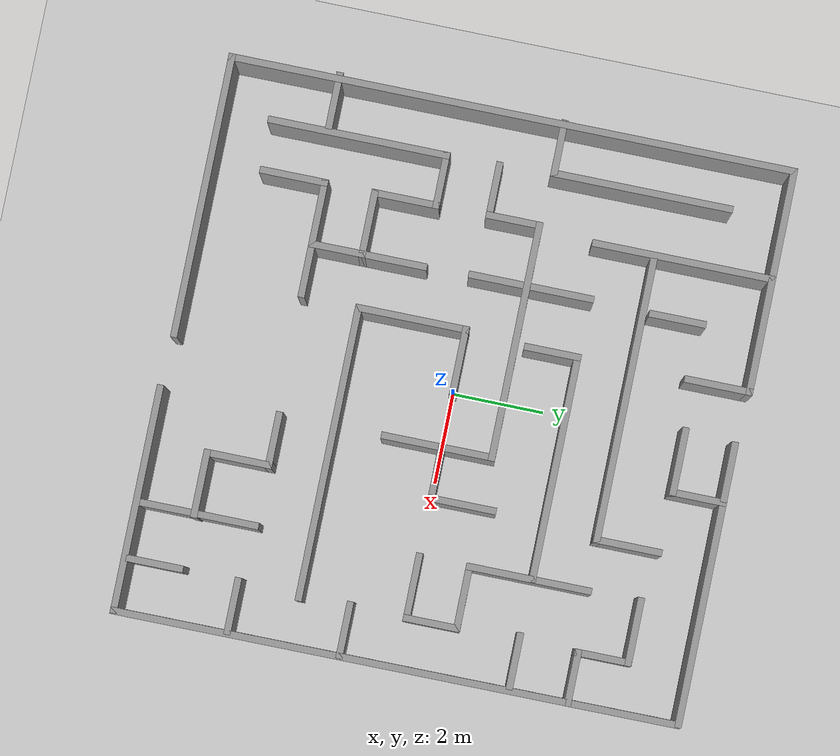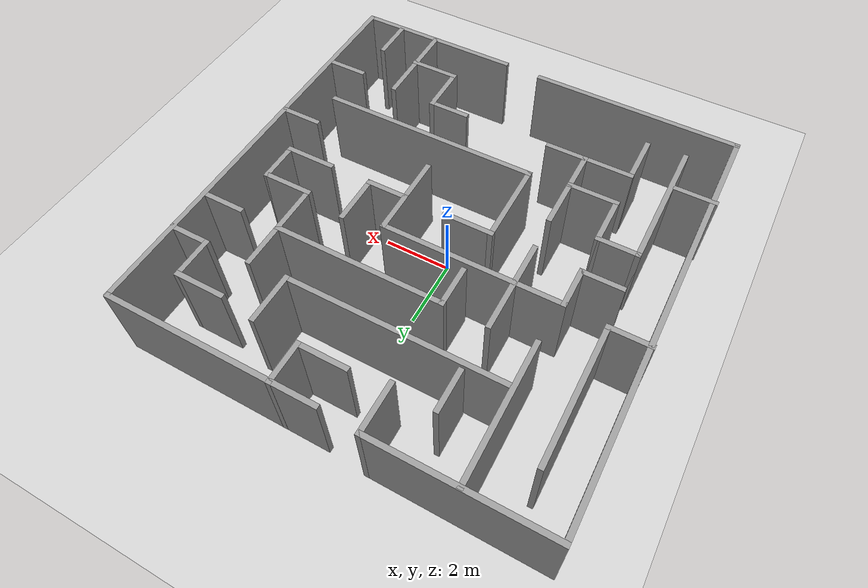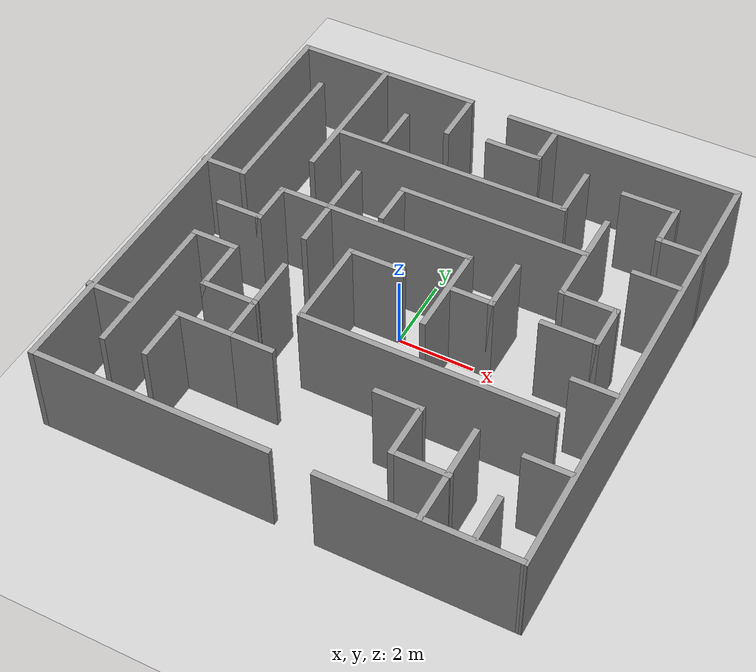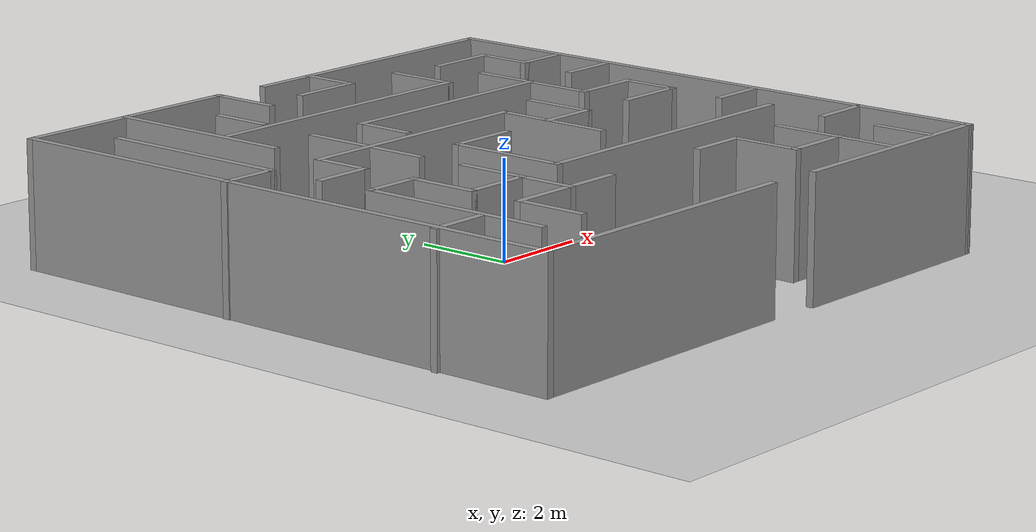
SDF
<sdf version="1.6">
 <world name="default">
  <light name="sun" type="directional">
   <pose>0 0 10 0 -0 0</pose>
   <diffuse>0.8 0.8 0.8 1</diffuse>
   <specular>0.1 0.1 0.1 1</specular>
   <attenuation>
    <range>1000</range>
    <constant>0.9</constant>
    <linear>0.01</linear>
    <quadratic>0.001</quadratic>
   </attenuation>
   <direction>-0.5 0.5 -1</direction>
  </light>
  <gravity>0 0 -9.8</gravity>
  <magnetic_field>6e-06 2.3e-05 -4.2e-05</magnetic_field>
  <atmosphere type="adiabatic"/>
  <physics name="default_physics" default="0" type="ode">
   <max_step_size>0.001</max_step_size>
   <real_time_factor>1</real_time_factor>
   <real_time_update_rate>1000</real_time_update_rate>
  </physics>
  <scene><ambient>255 255 255 1</ambient><background>0.7 0.7 0.7 1</background><shadows>1</shadows></scene>
  <spherical_coordinates>
   <surface_model>EARTH_WGS84</surface_model>
   <latitude_deg>0</latitude_deg>
   <longitude_deg>0</longitude_deg>
   <elevation>0</elevation>
   <heading_deg>0</heading_deg>
  </spherical_coordinates>
  <model name="ue3_Maze.world">
   <pose>0.00509 0.03991 0 0 -0 0</pose>
   <link name="Wall_1">
    <collision name="Wall_1_Collision">
     <geometry><box><size>1.5 0.15 2.5</size></box></geometry>
     <pose>0 0 1.25 0 -0 0</pose>
    </collision>
    <visual name="Wall_1_Visual">
     <pose>0 0 1.25 0 -0 0</pose>
     <geometry><box><size>1.5 0.15 2.5</size></box></geometry>
     <material>
      <script><uri>file://media/materials/scripts/gazebo.material</uri><name>Gazebo/Grey</name></script>
      <ambient>0.4 0.4 0.4 1</ambient>
     </material>
    </visual>
    <pose>-1.20477 5.53143 0 0 -0 1.5708</pose>
   </link>
   <link name="Wall_10">
    <collision name="Wall_10_Collision">
     <geometry><box><size>12.4598 0.15 2.5</size></box></geometry>
     <pose>0 0 1.25 0 -0 0</pose>
    </collision>
    <visual name="Wall_10_Visual">
     <pose>0 0 1.25 0 -0 0</pose>
     <geometry><box><size>12.4598 0.15 2.5</size></box></geometry>
     <material>
      <script><uri>file://media/materials/scripts/gazebo.material</uri><name>Gazebo/Grey</name></script>
      <ambient>0.4 0.4 0.4 1</ambient>
     </material>
    </visual>
    <pose>6.1121 -0.051418 0 0 0 -1.56916</pose>
   </link>
   <link name="Wall_11">
    <collision name="Wall_11_Collision">
     <geometry><box><size>5 0.15 2.5</size></box></geometry>
     <pose>0 0 1.25 0 -0 0</pose>
    </collision>
    <visual name="Wall_11_Visual">
     <pose>0 0 1.25 0 -0 0</pose>
     <geometry><box><size>5 0.15 2.5</size></box></geometry>
     <material>
      <script><uri>file://media/materials/scripts/gazebo.material</uri><name>Gazebo/Grey</name></script>
      <ambient>0.4 0.4 0.4 1</ambient>
     </material>
    </visual>
    <pose>3.67704 -6.20631 0 0 -0 3.14159</pose>
   </link>
   <link name="Wall_13">
    <collision name="Wall_13_Collision">
     <geometry><box><size>6.25 0.15 2.5</size></box></geometry>
     <pose>0 0 1.25 0 -0 0</pose>
    </collision>
    <visual name="Wall_13_Visual">
     <pose>0 0 1.25 0 -0 0</pose>
     <geometry><box><size>6.25 0.15 2.5</size></box></geometry>
     <material>
      <script><uri>file://media/materials/scripts/gazebo.material</uri><name>Gazebo/Grey</name></script>
      <ambient>0.4 0.4 0.4 1</ambient>
     </material>
    </visual>
    <pose>-0.487945 3.6295 0 0 -0 0</pose>
   </link>
   <link name="Wall_14">
    <collision name="Wall_14_Collision">
     <geometry><box><size>1.5 0.15 2.5</size></box></geometry>
     <pose>0 0 1.25 0 -0 0</pose>
    </collision>
    <visual name="Wall_14_Visual">
     <pose>0 0 1.25 0 -0 0</pose>
     <geometry><box><size>1.5 0.15 2.5</size></box></geometry>
     <material>
      <script><uri>file://media/materials/scripts/gazebo.material</uri><name>Gazebo/Grey</name></script>
      <ambient>0.4 0.4 0.4 1</ambient>
     </material>
    </visual>
    <pose>2.56205 4.3045 0 0 -0 1.5708</pose>
   </link>
   <link name="Wall_16">
    <collision name="Wall_16_Collision">
     <geometry><box><size>1.25 0.15 2.5</size></box></geometry>
     <pose>0 0 1.25 0 -0 0</pose>
    </collision>
    <visual name="Wall_16_Visual">
     <pose>0 0 1.25 0 -0 0</pose>
     <geometry><box><size>1.25 0.15 2.5</size></box></geometry>
     <material>
      <script><uri>file://media/materials/scripts/gazebo.material</uri><name>Gazebo/Grey</name></script>
      <ambient>0.4 0.4 0.4 1</ambient>
     </material>
    </visual>
    <pose>-2.4317 4.38688 0 0 0 -1.5708</pose>
   </link>
   <link name="Wall_2">
    <collision name="Wall_2_Collision">
     <geometry><box><size>5 0.15 2.5</size></box></geometry>
     <pose>0 0 1.25 0 -0 0</pose>
    </collision>
    <visual name="Wall_2_Visual">
     <pose>0 0 1.25 0 -0 0</pose>
     <geometry><box><size>5 0.15 2.5</size></box></geometry>
     <material>
      <script><uri>file://media/materials/scripts/gazebo.material</uri><name>Gazebo/Grey</name></script>
      <ambient>0.4 0.4 0.4 1</ambient>
     </material>
    </visual>
    <pose>-3.62977 6.20643 0 0 -0 3.14159</pose>
   </link>
   <link name="Wall_20">
    <collision name="Wall_20_Collision">
     <geometry><box><size>1.25 0.15 2.5</size></box></geometry>
     <pose>0 0 1.25 0 -0 0</pose>
    </collision>
    <visual name="Wall_20_Visual">
     <pose>0 0 1.25 0 -0 0</pose>
     <geometry><box><size>1.25 0.15 2.5</size></box></geometry>
     <material>
      <script><uri>file://media/materials/scripts/gazebo.material</uri><name>Gazebo/Grey</name></script>
      <ambient>0.4 0.4 0.4 1</ambient>
     </material>
    </visual>
    <pose>1.23929 5.57632 0 0 0 -1.5708</pose>
   </link>
   <link name="Wall_21">
    <collision name="Wall_21_Collision">
     <geometry><box><size>1.5 0.15 2.5</size></box></geometry>
     <pose>0 0 1.25 0 -0 0</pose>
    </collision>
    <visual name="Wall_21_Visual">
     <pose>0 0 1.25 0 -0 0</pose>
     <geometry><box><size>1.5 0.15 2.5</size></box></geometry>
     <material>
      <script><uri>file://media/materials/scripts/gazebo.material</uri><name>Gazebo/Grey</name></script>
      <ambient>0.4 0.4 0.4 1</ambient>
     </material>
    </visual>
    <pose>0.564288 5.02632 0 0 -0 3.14159</pose>
   </link>
   <link name="Wall_23">
    <collision name="Wall_23_Collision">
     <geometry><box><size>1.25 0.15 2.5</size></box></geometry>
     <pose>0 0 1.25 0 -0 0</pose>
    </collision>
    <visual name="Wall_23_Visual">
     <pose>0 0 1.25 0 -0 0</pose>
     <geometry><box><size>1.25 0.15 2.5</size></box></geometry>
     <material>
      <script><uri>file://media/materials/scripts/gazebo.material</uri><name>Gazebo/Grey</name></script>
      <ambient>0.4 0.4 0.4 1</ambient>
     </material>
    </visual>
    <pose>5.55677 3.71269 0 0 -0 3.14159</pose>
   </link>
   <link name="Wall_24">
    <collision name="Wall_24_Collision">
     <geometry><box><size>1.25 0.15 2.5</size></box></geometry>
     <pose>0 0 1.25 0 -0 0</pose>
    </collision>
    <visual name="Wall_24_Visual">
     <pose>0 0 1.25 0 -0 0</pose>
     <geometry><box><size>1.25 0.15 2.5</size></box></geometry>
     <material>
      <script><uri>file://media/materials/scripts/gazebo.material</uri><name>Gazebo/Grey</name></script>
      <ambient>0.4 0.4 0.4 1</ambient>
     </material>
    </visual>
    <pose>5.00677 4.26269 0 0 -0 1.5708</pose>
   </link>
   <link name="Wall_25">
    <collision name="Wall_25_Collision">
     <geometry><box><size>1.5 0.15 2.5</size></box></geometry>
     <pose>0 0 1.25 0 -0 0</pose>
    </collision>
    <visual name="Wall_25_Visual">
     <pose>0 0 1.25 0 -0 0</pose>
     <geometry><box><size>1.5 0.15 2.5</size></box></geometry>
     <material>
      <script><uri>file://media/materials/scripts/gazebo.material</uri><name>Gazebo/Grey</name></script>
      <ambient>0.4 0.4 0.4 1</ambient>
     </material>
    </visual>
    <pose>4.33177 4.81269 0 0 -0 3.14159</pose>
   </link>
   <link name="Wall_27">
    <collision name="Wall_27_Collision">
     <geometry><box><size>1.25 0.15 2.5</size></box></geometry>
     <pose>0 0 1.25 0 -0 0</pose>
    </collision>
    <visual name="Wall_27_Visual">
     <pose>0 0 1.25 0 -0 0</pose>
     <geometry><box><size>1.25 0.15 2.5</size></box></geometry>
     <material>
      <script><uri>file://media/materials/scripts/gazebo.material</uri><name>Gazebo/Grey</name></script>
      <ambient>0.4 0.4 0.4 1</ambient>
     </material>
    </visual>
    <pose>5.4562 2.42542 0 0 -0 3.14159</pose>
   </link>
   <link name="Wall_29">
    <collision name="Wall_29_Collision">
     <geometry><box><size>1.25 0.15 2.5</size></box></geometry>
     <pose>0 0 1.25 0 -0 0</pose>
    </collision>
    <visual name="Wall_29_Visual">
     <pose>0 0 1.25 0 -0 0</pose>
     <geometry><box><size>1.25 0.15 2.5</size></box></geometry>
     <material>
      <script><uri>file://media/materials/scripts/gazebo.material</uri><name>Gazebo/Grey</name></script>
      <ambient>0.4 0.4 0.4 1</ambient>
     </material>
    </visual>
    <pose>5.53666 -1.27548 0 0 -0 3.14159</pose>
   </link>
   <link name="Wall_3">
    <collision name="Wall_3_Collision">
     <geometry><box><size>12.5 0.15 2.5</size></box></geometry>
     <pose>0 0 1.25 0 -0 0</pose>
    </collision>
    <visual name="Wall_3_Visual">
     <pose>0 0 1.25 0 -0 0</pose>
     <geometry><box><size>12.5 0.15 2.5</size></box></geometry>
     <material>
      <script><uri>file://media/materials/scripts/gazebo.material</uri><name>Gazebo/Grey</name></script>
      <ambient>0.4 0.4 0.4 1</ambient>
     </material>
    </visual>
    <pose>-6.05477 0.031427 0 0 0 -1.5708</pose>
   </link>
   <link name="Wall_31">
    <collision name="Wall_31_Collision">
     <geometry><box><size>1.25 0.15 2.5</size></box></geometry>
     <pose>0 0 1.25 0 -0 0</pose>
    </collision>
    <visual name="Wall_31_Visual">
     <pose>0 0 1.25 0 -0 0</pose>
     <geometry><box><size>1.25 0.15 2.5</size></box></geometry>
     <material>
      <script><uri>file://media/materials/scripts/gazebo.material</uri><name>Gazebo/Grey</name></script>
      <ambient>0.4 0.4 0.4 1</ambient>
     </material>
    </visual>
    <pose>5.51655 -3.72933 0 0 -0 3.14159</pose>
   </link>
   <link name="Wall_33">
    <collision name="Wall_33_Collision">
     <geometry><box><size>1.25 0.15 2.5</size></box></geometry>
     <pose>0 0 1.25 0 -0 0</pose>
    </collision>
    <visual name="Wall_33_Visual">
     <pose>0 0 1.25 0 -0 0</pose>
     <geometry><box><size>1.25 0.15 2.5</size></box></geometry>
     <material>
      <script><uri>file://media/materials/scripts/gazebo.material</uri><name>Gazebo/Grey</name></script>
      <ambient>0.4 0.4 0.4 1</ambient>
     </material>
    </visual>
    <pose>5.51655 -3.72933 0 0 -0 3.14159</pose>
   </link>
   <link name="Wall_37">
    <collision name="Wall_37_Collision">
     <geometry><box><size>1.25 0.15 2.5</size></box></geometry>
     <pose>0 0 1.25 0 -0 0</pose>
    </collision>
    <visual name="Wall_37_Visual">
     <pose>0 0 1.25 0 -0 0</pose>
     <geometry><box><size>1.25 0.15 2.5</size></box></geometry>
     <material>
      <script><uri>file://media/materials/scripts/gazebo.material</uri><name>Gazebo/Grey</name></script>
      <ambient>0.4 0.4 0.4 1</ambient>
     </material>
    </visual>
    <pose>4.9603 -5.55273 0 0 -0 1.5708</pose>
   </link>
   <link name="Wall_39">
    <collision name="Wall_39_Collision">
     <geometry><box><size>2.75 0.15 2.5</size></box></geometry>
     <pose>0 0 1.25 0 -0 0</pose>
    </collision>
    <visual name="Wall_39_Visual">
     <pose>0 0 1.25 0 -0 0</pose>
     <geometry><box><size>2.75 0.15 2.5</size></box></geometry>
     <material>
      <script><uri>file://media/materials/scripts/gazebo.material</uri><name>Gazebo/Grey</name></script>
      <ambient>0.4 0.4 0.4 1</ambient>
     </material>
    </visual>
    <pose>3.73337 -4.9033 0 0 -0 1.5708</pose>
   </link>
   <link name="Wall_4">
    <collision name="Wall_4_Collision">
     <geometry><box><size>6.25 0.15 2.5</size></box></geometry>
     <pose>0 0 1.25 0 -0 0</pose>
    </collision>
    <visual name="Wall_4_Visual">
     <pose>0 0 1.25 0 -0 0</pose>
     <geometry><box><size>6.25 0.15 2.5</size></box></geometry>
     <material>
      <script><uri>file://media/materials/scripts/gazebo.material</uri><name>Gazebo/Grey</name></script>
      <ambient>0.4 0.4 0.4 1</ambient>
     </material>
    </visual>
    <pose>-3.00477 -6.14357 0 0 -0 0</pose>
   </link>
   <link name="Wall_41">
    <collision name="Wall_41_Collision">
     <geometry><box><size>1.5 0.15 2.5</size></box></geometry>
     <pose>0 0 1.25 0 -0 0</pose>
    </collision>
    <visual name="Wall_41_Visual">
     <pose>0 0 1.25 0 -0 0</pose>
     <geometry><box><size>1.5 0.15 2.5</size></box></geometry>
     <material>
      <script><uri>file://media/materials/scripts/gazebo.material</uri><name>Gazebo/Grey</name></script>
      <ambient>0.4 0.4 0.4 1</ambient>
     </material>
    </visual>
    <pose>3.07849 -4.93615 0 0 -0 3.14159</pose>
   </link>
   <link name="Wall_42">
    <collision name="Wall_42_Collision">
     <geometry><box><size>1.5 0.15 2.5</size></box></geometry>
     <pose>0 0 1.25 0 -0 0</pose>
    </collision>
    <visual name="Wall_42_Visual">
     <pose>0 0 1.25 0 -0 0</pose>
     <geometry><box><size>1.5 0.15 2.5</size></box></geometry>
     <material>
      <script><uri>file://media/materials/scripts/gazebo.material</uri><name>Gazebo/Grey</name></script>
      <ambient>0.4 0.4 0.4 1</ambient>
     </material>
    </visual>
    <pose>2.40348 -4.26115 0 0 -0 1.5708</pose>
   </link>
   <link name="Wall_43">
    <collision name="Wall_43_Collision">
     <geometry><box><size>1.25 0.15 2.5</size></box></geometry>
     <pose>0 0 1.25 0 -0 0</pose>
    </collision>
    <visual name="Wall_43_Visual">
     <pose>0 0 1.25 0 -0 0</pose>
     <geometry><box><size>1.25 0.15 2.5</size></box></geometry>
     <material>
      <script><uri>file://media/materials/scripts/gazebo.material</uri><name>Gazebo/Grey</name></script>
      <ambient>0.4 0.4 0.4 1</ambient>
     </material>
    </visual>
    <pose>1.85349 -3.58615 0 0 -0 3.14159</pose>
   </link>
   <link name="Wall_45">
    <collision name="Wall_45_Collision">
     <geometry><box><size>1.25 0.15 2.5</size></box></geometry>
     <pose>0 0 1.25 0 -0 0</pose>
    </collision>
    <visual name="Wall_45_Visual">
     <pose>0 0 1.25 0 -0 0</pose>
     <geometry><box><size>1.25 0.15 2.5</size></box></geometry>
     <material>
      <script><uri>file://media/materials/scripts/gazebo.material</uri><name>Gazebo/Grey</name></script>
      <ambient>0.4 0.4 0.4 1</ambient>
     </material>
    </visual>
    <pose>-5.53205 1.15827 0 0 -0 0</pose>
   </link>
   <link name="Wall_46">
    <collision name="Wall_46_Collision">
     <geometry><box><size>4 0.15 2.5</size></box></geometry>
     <pose>0 0 1.25 0 -0 0</pose>
    </collision>
    <visual name="Wall_46_Visual">
     <pose>0 0 1.25 0 -0 0</pose>
     <geometry><box><size>4 0.15 2.5</size></box></geometry>
     <material>
      <script><uri>file://media/materials/scripts/gazebo.material</uri><name>Gazebo/Grey</name></script>
      <ambient>0.4 0.4 0.4 1</ambient>
     </material>
    </visual>
    <pose>-4.98205 3.08327 0 0 -0 1.5708</pose>
   </link>
   <link name="Wall_48">
    <collision name="Wall_48_Collision">
     <geometry><box><size>1.25 0.15 2.5</size></box></geometry>
     <pose>0 0 1.25 0 -0 0</pose>
    </collision>
    <visual name="Wall_48_Visual">
     <pose>0 0 1.25 0 -0 0</pose>
     <geometry><box><size>1.25 0.15 2.5</size></box></geometry>
     <material>
      <script><uri>file://media/materials/scripts/gazebo.material</uri><name>Gazebo/Grey</name></script>
      <ambient>0.4 0.4 0.4 1</ambient>
     </material>
    </visual>
    <pose>-5.57228 -3.78967 0 0 -0 0</pose>
   </link>
   <link name="Wall_50">
    <collision name="Wall_50_Collision">
     <geometry><box><size>4 0.15 2.5</size></box></geometry>
     <pose>0 0 1.25 0 -0 0</pose>
    </collision>
    <visual name="Wall_50_Visual">
     <pose>0 0 1.25 0 -0 0</pose>
     <geometry><box><size>4 0.15 2.5</size></box></geometry>
     <material>
      <script><uri>file://media/materials/scripts/gazebo.material</uri><name>Gazebo/Grey</name></script>
      <ambient>0.4 0.4 0.4 1</ambient>
     </material>
    </visual>
    <pose>-4.89535 -3.11171 0 0 -0 1.5708</pose>
   </link>
   <link name="Wall_51">
    <collision name="Wall_51_Collision">
     <geometry><box><size>1.25 0.15 2.5</size></box></geometry>
     <pose>0 0 1.25 0 -0 0</pose>
    </collision>
    <visual name="Wall_51_Visual">
     <pose>0 0 1.25 0 -0 0</pose>
     <geometry><box><size>1.25 0.15 2.5</size></box></geometry>
     <material>
      <script><uri>file://media/materials/scripts/gazebo.material</uri><name>Gazebo/Grey</name></script>
      <ambient>0.4 0.4 0.4 1</ambient>
     </material>
    </visual>
    <pose>-4.34535 -1.18671 0 0 -0 0</pose>
   </link>
   <link name="Wall_52">
    <collision name="Wall_52_Collision">
     <geometry><box><size>1.5 0.15 2.5</size></box></geometry>
     <pose>0 0 1.25 0 -0 0</pose>
    </collision>
    <visual name="Wall_52_Visual">
     <pose>0 0 1.25 0 -0 0</pose>
     <geometry><box><size>1.5 0.15 2.5</size></box></geometry>
     <material>
      <script><uri>file://media/materials/scripts/gazebo.material</uri><name>Gazebo/Grey</name></script>
      <ambient>0.4 0.4 0.4 1</ambient>
     </material>
    </visual>
    <pose>-3.79535 -1.86171 0 0 0 -1.5708</pose>
   </link>
   <link name="Wall_53">
    <collision name="Wall_53_Collision">
     <geometry><box><size>1.5 0.15 2.5</size></box></geometry>
     <pose>0 0 1.25 0 -0 0</pose>
    </collision>
    <visual name="Wall_53_Visual">
     <pose>0 0 1.25 0 -0 0</pose>
     <geometry><box><size>1.5 0.15 2.5</size></box></geometry>
     <material>
      <script><uri>file://media/materials/scripts/gazebo.material</uri><name>Gazebo/Grey</name></script>
      <ambient>0.4 0.4 0.4 1</ambient>
     </material>
    </visual>
    <pose>-3.12035 -2.53671 0 0 -0 0</pose>
   </link>
   <link name="Wall_54">
    <collision name="Wall_54_Collision">
     <geometry><box><size>1.25 0.15 2.5</size></box></geometry>
     <pose>0 0 1.25 0 -0 0</pose>
    </collision>
    <visual name="Wall_54_Visual">
     <pose>0 0 1.25 0 -0 0</pose>
     <geometry><box><size>1.25 0.15 2.5</size></box></geometry>
     <material>
      <script><uri>file://media/materials/scripts/gazebo.material</uri><name>Gazebo/Grey</name></script>
      <ambient>0.4 0.4 0.4 1</ambient>
     </material>
    </visual>
    <pose>-2.44535 -3.08671 0 0 0 -1.5708</pose>
   </link>
   <link name="Wall_55">
    <collision name="Wall_55_Collision">
     <geometry><box><size>1.5 0.15 2.5</size></box></geometry>
     <pose>0 0 1.25 0 -0 0</pose>
    </collision>
    <visual name="Wall_55_Visual">
     <pose>0 0 1.25 0 -0 0</pose>
     <geometry><box><size>1.5 0.15 2.5</size></box></geometry>
     <material>
      <script><uri>file://media/materials/scripts/gazebo.material</uri><name>Gazebo/Grey</name></script>
      <ambient>0.4 0.4 0.4 1</ambient>
     </material>
    </visual>
    <pose>-3.12035 -3.63671 0 0 -0 3.14159</pose>
   </link>
   <link name="Wall_56">
    <collision name="Wall_56_Collision">
     <geometry><box><size>1.5 0.15 2.5</size></box></geometry>
     <pose>0 0 1.25 0 -0 0</pose>
    </collision>
    <visual name="Wall_56_Visual">
     <pose>0 0 1.25 0 -0 0</pose>
     <geometry><box><size>1.5 0.15 2.5</size></box></geometry>
     <material>
      <script><uri>file://media/materials/scripts/gazebo.material</uri><name>Gazebo/Grey</name></script>
      <ambient>0.4 0.4 0.4 1</ambient>
     </material>
    </visual>
    <pose>-3.79535 -4.31171 0 0 0 -1.5708</pose>
   </link>
   <link name="Wall_58">
    <collision name="Wall_58_Collision">
     <geometry><box><size>1.25 0.15 2.5</size></box></geometry>
     <pose>0 0 1.25 0 -0 0</pose>
    </collision>
    <visual name="Wall_58_Visual">
     <pose>0 0 1.25 0 -0 0</pose>
     <geometry><box><size>1.25 0.15 2.5</size></box></geometry>
     <material>
      <script><uri>file://media/materials/scripts/gazebo.material</uri><name>Gazebo/Grey</name></script>
      <ambient>0.4 0.4 0.4 1</ambient>
     </material>
    </visual>
    <pose>-4.36547 -0.028434 0 0 -0 0</pose>
   </link>
   <link name="Wall_59">
    <collision name="Wall_59_Collision">
     <geometry><box><size>1.25 0.15 2.5</size></box></geometry>
     <pose>0 0 1.25 0 -0 0</pose>
    </collision>
    <visual name="Wall_59_Visual">
     <pose>0 0 1.25 0 -0 0</pose>
     <geometry><box><size>1.25 0.15 2.5</size></box></geometry>
     <material>
      <script><uri>file://media/materials/scripts/gazebo.material</uri><name>Gazebo/Grey</name></script>
      <ambient>0.4 0.4 0.4 1</ambient>
     </material>
    </visual>
    <pose>-3.81547 0.521566 0 0 -0 1.5708</pose>
   </link>
   <link name="Wall_60">
    <collision name="Wall_60_Collision">
     <geometry><box><size>5.25 0.15 2.5</size></box></geometry>
     <pose>0 0 1.25 0 -0 0</pose>
    </collision>
    <visual name="Wall_60_Visual">
     <pose>0 0 1.25 0 -0 0</pose>
     <geometry><box><size>5.25 0.15 2.5</size></box></geometry>
     <material>
      <script><uri>file://media/materials/scripts/gazebo.material</uri><name>Gazebo/Grey</name></script>
      <ambient>0.4 0.4 0.4 1</ambient>
     </material>
    </visual>
    <pose>-1.26547 1.07157 0 0 -0 0</pose>
   </link>
   <link name="Wall_61">
    <collision name="Wall_61_Collision">
     <geometry><box><size>2.5 0.15 2.5</size></box></geometry>
     <pose>0 0 1.25 0 -0 0</pose>
    </collision>
    <visual name="Wall_61_Visual">
     <pose>0 0 1.25 0 -0 0</pose>
     <geometry><box><size>2.5 0.15 2.5</size></box></geometry>
     <material>
      <script><uri>file://media/materials/scripts/gazebo.material</uri><name>Gazebo/Grey</name></script>
      <ambient>0.4 0.4 0.4 1</ambient>
     </material>
    </visual>
    <pose>1.28453 -0.103434 0 0 0 -1.5708</pose>
   </link>
   <link name="Wall_63">
    <collision name="Wall_63_Collision">
     <geometry><box><size>2.75 0.15 2.5</size></box></geometry>
     <pose>0 0 1.25 0 -0 0</pose>
    </collision>
    <visual name="Wall_63_Visual">
     <pose>0 0 1.25 0 -0 0</pose>
     <geometry><box><size>2.75 0.15 2.5</size></box></geometry>
     <material>
      <script><uri>file://media/materials/scripts/gazebo.material</uri><name>Gazebo/Grey</name></script>
      <ambient>0.4 0.4 0.4 1</ambient>
     </material>
    </visual>
    <pose>-2.48172 1.16565 0 0 0 -1.5708</pose>
   </link>
   <link name="Wall_65">
    <collision name="Wall_65_Collision">
     <geometry><box><size>1.5 0.15 2.5</size></box></geometry>
     <pose>0 0 1.25 0 -0 0</pose>
    </collision>
    <visual name="Wall_65_Visual">
     <pose>0 0 1.25 0 -0 0</pose>
     <geometry><box><size>1.5 0.15 2.5</size></box></geometry>
     <material>
      <script><uri>file://media/materials/scripts/gazebo.material</uri><name>Gazebo/Grey</name></script>
      <ambient>0.4 0.4 0.4 1</ambient>
     </material>
    </visual>
    <pose>-0.622412 -0.028434 0 0 -0 3.14159</pose>
   </link>
   <link name="Wall_66">
    <collision name="Wall_66_Collision">
     <geometry><box><size>2.5 0.15 2.5</size></box></geometry>
     <pose>0 0 1.25 0 -0 0</pose>
    </collision>
    <visual name="Wall_66_Visual">
     <pose>0 0 1.25 0 -0 0</pose>
     <geometry><box><size>2.5 0.15 2.5</size></box></geometry>
     <material>
      <script><uri>file://media/materials/scripts/gazebo.material</uri><name>Gazebo/Grey</name></script>
      <ambient>0.4 0.4 0.4 1</ambient>
     </material>
    </visual>
    <pose>-1.29741 -1.20343 0 0 0 -1.5708</pose>
   </link>
   <link name="Wall_67">
    <collision name="Wall_67_Collision">
     <geometry><box><size>6.5 0.15 2.5</size></box></geometry>
     <pose>0 0 1.25 0 -0 0</pose>
    </collision>
    <visual name="Wall_67_Visual">
     <pose>0 0 1.25 0 -0 0</pose>
     <geometry><box><size>6.5 0.15 2.5</size></box></geometry>
     <material>
      <script><uri>file://media/materials/scripts/gazebo.material</uri><name>Gazebo/Grey</name></script>
      <ambient>0.4 0.4 0.4 1</ambient>
     </material>
    </visual>
    <pose>1.87759 -2.37843 0 0 -0 0</pose>
   </link>
   <link name="Wall_7">
    <collision name="Wall_7_Collision">
     <geometry><box><size>4 0.15 2.5</size></box></geometry>
     <pose>0 0 1.25 0 -0 0</pose>
    </collision>
    <visual name="Wall_7_Visual">
     <pose>0 0 1.25 0 -0 0</pose>
     <geometry><box><size>4 0.15 2.5</size></box></geometry>
     <material>
      <script><uri>file://media/materials/scripts/gazebo.material</uri><name>Gazebo/Grey</name></script>
      <ambient>0.4 0.4 0.4 1</ambient>
     </material>
    </visual>
    <pose>-3.67874 4.25892 0 0 0 -1.5708</pose>
   </link>
   <link name="Wall_70">
    <collision name="Wall_70_Collision">
     <geometry><box><size>1.5 0.15 2.5</size></box></geometry>
     <pose>0 0 1.25 0 -0 0</pose>
    </collision>
    <visual name="Wall_70_Visual">
     <pose>0 0 1.25 0 -0 0</pose>
     <geometry><box><size>1.5 0.15 2.5</size></box></geometry>
     <material>
      <script><uri>file://media/materials/scripts/gazebo.material</uri><name>Gazebo/Grey</name></script>
      <ambient>0.4 0.4 0.4 1</ambient>
     </material>
    </visual>
    <pose>4.34803 -0.031722 0 0 -0 0</pose>
   </link>
   <link name="Wall_71">
    <collision name="Wall_71_Collision">
     <geometry><box><size>1.25 0.15 2.5</size></box></geometry>
     <pose>0 0 1.25 0 -0 0</pose>
    </collision>
    <visual name="Wall_71_Visual">
     <pose>0 0 1.25 0 -0 0</pose>
     <geometry><box><size>1.25 0.15 2.5</size></box></geometry>
     <material>
      <script><uri>file://media/materials/scripts/gazebo.material</uri><name>Gazebo/Grey</name></script>
      <ambient>0.4 0.4 0.4 1</ambient>
     </material>
    </visual>
    <pose>5.02303 0.518278 0 0 -0 1.5708</pose>
   </link>
   <link name="Wall_72">
    <collision name="Wall_72_Collision">
     <geometry><box><size>1.5 0.15 2.5</size></box></geometry>
     <pose>0 0 1.25 0 -0 0</pose>
    </collision>
    <visual name="Wall_72_Visual">
     <pose>0 0 1.25 0 -0 0</pose>
     <geometry><box><size>1.5 0.15 2.5</size></box></geometry>
     <material>
      <script><uri>file://media/materials/scripts/gazebo.material</uri><name>Gazebo/Grey</name></script>
      <ambient>0.4 0.4 0.4 1</ambient>
     </material>
    </visual>
    <pose>4.34803 1.06828 0 0 -0 3.14159</pose>
   </link>
   <link name="Wall_73">
    <collision name="Wall_73_Collision">
     <geometry><box><size>2.75 0.15 2.5</size></box></geometry>
     <pose>0 0 1.25 0 -0 0</pose>
    </collision>
    <visual name="Wall_73_Visual">
     <pose>0 0 1.25 0 -0 0</pose>
     <geometry><box><size>2.75 0.15 2.5</size></box></geometry>
     <material>
      <script><uri>file://media/materials/scripts/gazebo.material</uri><name>Gazebo/Grey</name></script>
      <ambient>0.4 0.4 0.4 1</ambient>
     </material>
    </visual>
    <pose>3.67303 2.36828 0 0 -0 1.5708</pose>
   </link>
   <link name="Wall_75">
    <collision name="Wall_75_Collision">
     <geometry><box><size>5 0.15 2.5</size></box></geometry>
     <pose>0 0 1.25 0 -0 0</pose>
    </collision>
    <visual name="Wall_75_Visual">
     <pose>0 0 1.25 0 -0 0</pose>
     <geometry><box><size>5 0.15 2.5</size></box></geometry>
     <material>
      <script><uri>file://media/materials/scripts/gazebo.material</uri><name>Gazebo/Grey</name></script>
      <ambient>0.4 0.4 0.4 1</ambient>
     </material>
    </visual>
    <pose>1.22792 2.44554 0 0 -0 3.14159</pose>
   </link>
   <link name="Wall_76">
    <collision name="Wall_76_Collision">
     <geometry><box><size>1.25 0.15 2.5</size></box></geometry>
     <pose>0 0 1.25 0 -0 0</pose>
    </collision>
    <visual name="Wall_76_Visual">
     <pose>0 0 1.25 0 -0 0</pose>
     <geometry><box><size>1.25 0.15 2.5</size></box></geometry>
     <material>
      <script><uri>file://media/materials/scripts/gazebo.material</uri><name>Gazebo/Grey</name></script>
      <ambient>0.4 0.4 0.4 1</ambient>
     </material>
    </visual>
    <pose>-1.19708 1.89553 0 0 0 -1.5708</pose>
   </link>
   <link name="Wall_78">
    <collision name="Wall_78_Collision">
     <geometry><box><size>1.25 0.15 2.5</size></box></geometry>
     <pose>0 0 1.25 0 -0 0</pose>
    </collision>
    <visual name="Wall_78_Visual">
     <pose>0 0 1.25 0 -0 0</pose>
     <geometry><box><size>1.25 0.15 2.5</size></box></geometry>
     <material>
      <script><uri>file://media/materials/scripts/gazebo.material</uri><name>Gazebo/Grey</name></script>
      <ambient>0.4 0.4 0.4 1</ambient>
     </material>
    </visual>
    <pose>1.84963 -0.028434 0 0 -0 0</pose>
   </link>
   <link name="Wall_79">
    <collision name="Wall_79_Collision">
     <geometry><box><size>1.5 0.15 2.5</size></box></geometry>
     <pose>0 0 1.25 0 -0 0</pose>
    </collision>
    <visual name="Wall_79_Visual">
     <pose>0 0 1.25 0 -0 0</pose>
     <geometry><box><size>1.5 0.15 2.5</size></box></geometry>
     <material>
      <script><uri>file://media/materials/scripts/gazebo.material</uri><name>Gazebo/Grey</name></script>
      <ambient>0.4 0.4 0.4 1</ambient>
     </material>
    </visual>
    <pose>2.39963 0.646566 0 0 -0 1.5708</pose>
   </link>
   <link name="Wall_81">
    <collision name="Wall_81_Collision">
     <geometry><box><size>1.5 0.15 2.5</size></box></geometry>
     <pose>0 0 1.25 0 -0 0</pose>
    </collision>
    <visual name="Wall_81_Visual">
     <pose>0 0 1.25 0 -0 0</pose>
     <geometry><box><size>1.5 0.15 2.5</size></box></geometry>
     <material>
      <script><uri>file://media/materials/scripts/gazebo.material</uri><name>Gazebo/Grey</name></script>
      <ambient>0.4 0.4 0.4 1</ambient>
     </material>
    </visual>
    <pose>-2.44535 -1.86171 0 0 -0 1.5708</pose>
   </link>
   <link name="Wall_83">
    <collision name="Wall_83_Collision">
     <geometry><box><size>1.25 0.15 2.5</size></box></geometry>
     <pose>0 0 1.25 0 -0 0</pose>
    </collision>
    <visual name="Wall_83_Visual">
     <pose>0 0 1.25 0 -0 0</pose>
     <geometry><box><size>1.25 0.15 2.5</size></box></geometry>
     <material>
      <script><uri>file://media/materials/scripts/gazebo.material</uri><name>Gazebo/Grey</name></script>
      <ambient>0.4 0.4 0.4 1</ambient>
     </material>
    </visual>
    <pose>-1.89535 -3.63671 0 0 -0 0</pose>
   </link>
   <link name="Wall_9">
    <collision name="Wall_9_Collision">
     <geometry><box><size>6.25 0.15 2.5</size></box></geometry>
     <pose>0 0 1.25 0 -0 0</pose>
    </collision>
    <visual name="Wall_9_Visual">
     <pose>0 0 1.25 0 -0 0</pose>
     <geometry><box><size>6.25 0.15 2.5</size></box></geometry>
     <material>
      <script><uri>file://media/materials/scripts/gazebo.material</uri><name>Gazebo/Grey</name></script>
      <ambient>0.4 0.4 0.4 1</ambient>
     </material>
    </visual>
    <pose>3.03193 6.12358 0 0 -0 0</pose>
   </link>
   <static>1</static>
  </model>
  <model name="Project">
   <static>1</static>
   <link name="link">
    <collision name="collision">
     <geometry><plane><normal>0 0 1</normal><size>24 21</size></plane></geometry>
     <surface><friction><ode><mu>190</mu><mu2>50</mu2></ode></friction></surface>
    </collision>
    <visual name="visual">
     <cast_shadows>0</cast_shadows>
     <geometry><plane><normal>0 0 1</normal><size>24 21</size></plane></geometry>
     <material>
      <script>
       <uri>model://project/materials/scripts</uri>
       <uri>model://project/materials/textures/</uri>
       <name>project/Image</name>
      </script>
     </material>
    </visual>
   </link>
   <pose>4.08217 -0.018542 0 0 -0 0</pose>
  </model>
 </world>
</sdf>
